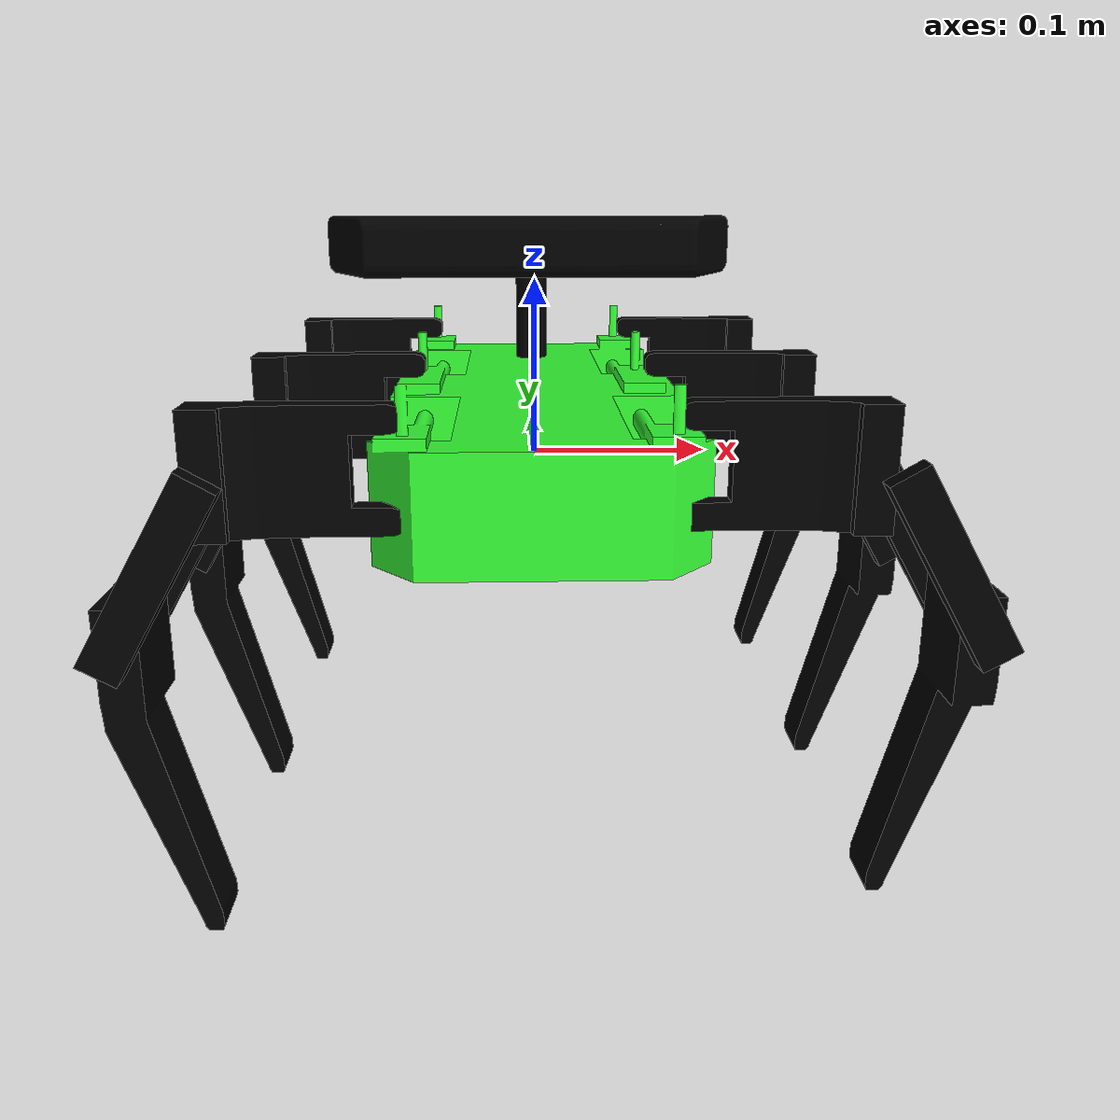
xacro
<?xml version="1.0"?>
<robot xmlns:xacro="http://www.ros.org/wiki/xacro"  name="INSECTOIDv1">
    <xacro:include filename="patterns.xacro"/>

	<link name="base_link"></link>

    <!--BODY -->
     <joint name="base_footprint_joint" type="fixed">
        <parent link="base_link"/>
        <child link="base_footprint"/>
        <origin xyz="0 0 0" rpy="0 0 0"/>
    </joint>
	<joint name="base_joint" type="fixed">
		<origin xyz="0 0 0.01 " />
		<parent link="base_link" />
		<child link="robot_link" />
	</joint>

    <link name="base_footprint">
    </link>
	<link name="robot_link">
		<visual>
			<origin xyz="0 0 0" rpy="0 0 ${pi/2}"/>
			<geometry>
				<mesh filename="${base_path}"/>
			</geometry>
			<material name="green">
				<color rgba="0.2 1 0.2 1"/>
			</material>
		</visual>
		<xacro:inertial_box mass="3.0" x="0.2" y="0.45" z="0.06">
            <origin xyz="0.0 0 0" rpy="0 0 0"/>
        </xacro:inertial_box>
	</link>
    <!--CAMERA-->
    <joint name="camera_joint" type="fixed">
        <origin xyz="0 0.15 0.1" rpy="0 0 ${pi/2}"/>
        <parent link="robot_link"/>
        <child link="camera_link"/>
    </joint>
    <!-- camera_link describes the camera -->

    <link name="camera_link">
        <visual>
            <origin xyz="-0.03 0 0" rpy="0 0 0"/>
            <geometry>
				<mesh filename="${camera}"/>
			</geometry>
        </visual>
        <visual>
            <origin xyz="-0.04 0 -0.04" rpy="0 0 0"/>
            <geometry>
                <cylinder length="0.06" radius="0.01" />
            </geometry>
            <material name="black" />
        </visual>
        <xacro:inertial_box mass="0.1" x="0.12" y="0.06" z="0.12">
            <origin xyz="0.0 0 0" rpy="0 0 0"/>
        </xacro:inertial_box>
    </link>

    <xacro:leg_section_joint joint_name="LL-1-1" joint_axis="0 0 1" joint_xyz="0.07 -0.154663 0.06" joint_parent="robot_link" joint_child="LL-1-1_link" lower_limit="${-(pi/4)}" upper_limit="${pi/4}"  />

    <xacro:leg_section_link link_name="LL-1-1_link" link_xyz="0.04 0 -0.04" link_rpy="0 ${-(pi/2)} 0" model="${arm_path_1}" />

    <xacro:leg_section_joint joint_name="LL-1-2" joint_axis="0 1 0" joint_xyz="0.09 0 -0.04" joint_parent="LL-1-1_link" joint_child="LL-1-2_link" lower_limit="${-pi}" upper_limit="0"  />

    <xacro:leg_section_link link_name="LL-1-2_link" link_xyz="0.02 0 -0.04" link_rpy="${-(pi/6)} 0 ${(pi/2)}" model="${arm_path_2}" />

    <xacro:leg_section_joint joint_name="LL-1-3" joint_axis="0 1 0" joint_xyz="0.04 0 -0.08" joint_parent="LL-1-2_link" joint_child="LL-1-3_link" lower_limit="${-pi/2}" upper_limit="1.51" />

    <xacro:leg_section_link link_name="LL-1-3_link" link_xyz="0 0 -0.06" link_rpy="0 0 ${-pi/2}" model="${arm_path_3}"/>

    <!--LEFT 2-nd-->

    <xacro:leg_section_joint joint_name="LL-2-1" joint_axis="0 0 1" joint_xyz="0.07 -0.01 0.06" joint_parent="robot_link" joint_child="LL-2-1_link" lower_limit="${-pi/4}" upper_limit="${pi/4}" />

    <xacro:leg_section_link link_name="LL-2-1_link" link_xyz="0.04 0 -0.04" link_rpy="0 ${-(pi/2)} 0" model="${arm_path_1}" />

    <xacro:leg_section_joint joint_name="LL-2-2" joint_axis="0 1 0" joint_xyz="0.09 0 -0.04" joint_parent="LL-2-1_link" joint_child="LL-2-2_link" lower_limit="${-pi}" upper_limit="0" />

    <xacro:leg_section_link link_name="LL-2-2_link" link_xyz="0.02 0 -0.04" link_rpy="${(-pi/6)} 0 ${(pi/2)}" model="${arm_path_2}"/>

    <xacro:leg_section_joint joint_name="LL-2-3" joint_axis="0 1 0" joint_xyz="0.04 0 -0.08" joint_parent="LL-2-2_link" joint_child="LL-2-3_link" lower_limit="${-pi/2}" upper_limit="1.51"/>

    <xacro:leg_section_link link_name="LL-2-3_link" link_xyz="0 0 -0.06" link_rpy="0 0 ${-pi/2}" model="${arm_path_3}"/>

<!--LEFT 3-nd-->

    <xacro:leg_section_joint joint_name="LL-3-1" joint_axis="0 0 1" joint_xyz="0.07 0.158646 0.06" joint_parent="robot_link" joint_child="LL-3-1_link" lower_limit="${-pi/4}" upper_limit="${pi/4}" />

    <xacro:leg_section_link link_name="LL-3-1_link" link_xyz="0.04 0 -0.04" link_rpy="0 ${-(pi/2)} 0" model="${arm_path_1}"/>

    <xacro:leg_section_joint joint_name="LL-3-2" joint_axis="0 1 0" joint_xyz="0.09 0 -0.04" joint_parent="LL-3-1_link" joint_child="LL-3-2_link" lower_limit="${-pi}" upper_limit="0" />

    <xacro:leg_section_link link_name="LL-3-2_link" link_xyz="0.02 0 -0.04" link_rpy="${(-pi/6)} 0 ${(pi/2)}" model="${arm_path_2}"/>

    <xacro:leg_section_joint joint_name="LL-3-3" joint_axis="0 1 0" joint_xyz="0.04 0 -0.08" joint_parent="LL-3-2_link" joint_child="LL-3-3_link" lower_limit="${-pi/2}" upper_limit="1.51" />

    <xacro:leg_section_link link_name="LL-3-3_link" link_xyz="0 0 -0.06" link_rpy="0 0 ${-pi/2}" model="${arm_path_3}"/>

<!--RIGHT 1-nd-->

    <xacro:leg_section_joint joint_name="RL-1-1" joint_axis="0 0 1" joint_xyz="-0.07 -0.158646 0.06" joint_parent="robot_link" joint_child="RL-1-1_link" lower_limit="${-pi/4}" upper_limit="${pi/4}" />

    <xacro:leg_section_link link_name="RL-1-1_link" link_xyz="-0.04 0 -0.04" link_rpy="0 ${(pi/2)} 0" model="${arm_path_1}"/>

    <xacro:leg_section_joint joint_name="RL-1-2" joint_axis="0 1 0" joint_xyz="-0.08 0 -0.04" joint_parent="RL-1-1_link" joint_child="RL-1-2_link" lower_limit="0" upper_limit="${pi}" />

    <xacro:leg_section_link link_name="RL-1-2_link" link_xyz="-0.02 0 -0.04" link_rpy="${(pi/6)} 0 ${(pi/2)}" model="${arm_path_2}"/>

    <xacro:leg_section_joint joint_name="RL-1-3" joint_axis="0 1 0" joint_xyz="-0.04 0 -0.08" joint_parent="RL-1-2_link" joint_child="RL-1-3_link" lower_limit="-1.51" upper_limit="${pi/2}" />

    <xacro:leg_section_link link_name="RL-1-3_link" link_xyz="0 0 -0.06" link_rpy="0 0 ${pi/2}" model="${arm_path_3}"/>

<!--RIGHT 2-nd-->

    <xacro:leg_section_joint joint_name="RL-2-1" joint_axis="0 0 1" joint_xyz="-0.07 -0.01 0.06" joint_parent="robot_link" joint_child="RL-2-1_link" lower_limit="${-pi/4}" upper_limit="${pi/4}" />

    <xacro:leg_section_link link_name="RL-2-1_link" link_xyz="-0.04 0 -0.04" link_rpy="0 ${(pi/2)} 0" model="${arm_path_1}"/>

    <xacro:leg_section_joint joint_name="RL-2-2" joint_axis="0 1 0" joint_xyz="-0.08 0 -0.04" joint_parent="RL-2-1_link" joint_child="RL-2-2_link" lower_limit="0" upper_limit="${pi}" />

    <xacro:leg_section_link link_name="RL-2-2_link" link_xyz="-0.02 0 -0.04" link_rpy="${(pi/6)} 0 ${(pi/2)}" model="${arm_path_2}"/>

    <xacro:leg_section_joint joint_name="RL-2-3" joint_axis="0 1 0" joint_xyz="-0.04 0 -0.08" joint_parent="RL-2-2_link" joint_child="RL-2-3_link" lower_limit="-1.51" upper_limit="${pi/2}" />

    <xacro:leg_section_link link_name="RL-2-3_link" link_xyz="0 0 -0.06" link_rpy="0 0 ${pi/2}" model="${arm_path_3}"/>

<!--RIGHT 3-nd-->

    <xacro:leg_section_joint joint_name="RL-3-1" joint_axis="0 0 1" joint_xyz="-0.07 0.158646 0.06" joint_parent="robot_link" joint_child="RL-3-1_link" lower_limit="${-pi/4}" upper_limit="${pi/4}" />

    <xacro:leg_section_link link_name="RL-3-1_link" link_xyz="-0.04 0 -0.04" link_rpy="0 ${(pi/2)} 0" model="${arm_path_1}"/>

    <xacro:leg_section_joint joint_name="RL-3-2" joint_axis="0 1 0" joint_xyz="-0.08 0 -0.04" joint_parent="RL-3-1_link" joint_child="RL-3-2_link" lower_limit="0" upper_limit="${pi}" />

    <xacro:leg_section_link link_name="RL-3-2_link" link_xyz="-0.02 0 -0.04" link_rpy="${(pi/6)} 0 ${(pi/2)}" model="${arm_path_2}"/>

    <xacro:leg_section_joint joint_name="RL-3-3" joint_axis="0 1 0" joint_xyz="-0.04 0 -0.08" joint_parent="RL-3-2_link" joint_child="RL-3-3_link" lower_limit="-1.51" upper_limit="${pi/2}" />

    <xacro:leg_section_link link_name="RL-3-3_link" link_xyz="0 0 -0.06" link_rpy="0 0 ${pi/2}" model="${arm_path_3}"/>

</robot>

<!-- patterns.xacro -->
<robot xmlns:xacro="http://www.ros.org/wiki/xacro">

<!--Models-->
    <xacro:property name="base_path" value="file:////home/zega/Desktop/ros_dev/src/real/meshes/base1.dae" />
    <xacro:property name="arm_path_1" value="file:////home/zega/Desktop/ros_dev/src/real/meshes/l-1.dae" />
    <xacro:property name="arm_path_2" value="file:////home/zega/Desktop/ros_dev/src/real/meshes/l-2.dae" />
    <xacro:property name="arm_path_3" value="file:////home/zega/Desktop/ros_dev/src/real/meshes/l-3.dae" />
    <xacro:property name="camera" value="file:////home/zega/Desktop/ros_dev/src/real/meshes/kinect.dae" />
 <!--Models-->
    <material name="white">
        <color rgba="1 1 1 1" />
    </material>

    <material name="orange">
        <color rgba="1 0.3 0.1 1"/>
    </material>

    <material name="blue">
        <color rgba="0.2 0.2 1 1"/>
    </material>

    <material name="black">
        <color rgba="0 0 0 1"/>
    </material>

    <material name="red">
        <color rgba="1 0 0 1"/>
    </material>
<!--Phys macro-->
	<xacro:macro name="inertial_box" params="mass x y z *origin">
		<inertial>
			<xacro:insert_block name="origin"/>
			<mass value="${mass}" />
			<inertia ixx="${(1/12) * mass * (y*y+z*z)}" ixy="0.0" ixz="0.0"
                    iyy="${(1/12) * mass * (x*x+z*z)}" iyz="0.0"
                    izz="${(1/12) * mass * (x*x+y*y)}" />
		</inertial>
	</xacro:macro>

    <xacro:macro name="inertial_cylinder" params="mass length radius *origin">
        <inertial>
            <xacro:insert_block name="origin"/>
            <mass value="${mass}" />
            <inertia ixx="${(1/12) * mass * (3*radius*radius + length*length)}" ixy="0.0" ixz="0.0"
                    iyy="${(1/12) * mass * (3*radius*radius + length*length)}" iyz="0.0"
                    izz="${(1/2) * mass * (radius*radius)}" />
        </inertial>
    </xacro:macro>

<!--LEG MACROS-->
    <xacro:macro name="leg_section_joint" params="joint_name joint_axis joint_xyz joint_parent joint_child lower_limit upper_limit ">
		<joint name="${joint_name}" type="revolute">
		    <origin xyz="${joint_xyz}" />
		    <parent link="${joint_parent}" />
		    <child link="${joint_child}" />
		    <axis xyz="${joint_axis}"/>
		    <limit lower="${lower_limit}" upper="${upper_limit}"  velocity="50" effort="5"/>
            <dynamics damping="1.7" friction="1.7"/>
	    </joint>

    </xacro:macro>
    <xacro:macro name="leg_section_link" params="link_name link_xyz link_rpy model">
        <link name="${link_name}">
		    <visual>
			    <origin xyz="${link_xyz}" rpy="${link_rpy}"/>
			    <geometry>
			    	<mesh filename="${model}"/>
			    </geometry>
		    </visual>
		    <collision>
			    <origin xyz="${link_xyz}" rpy="${link_rpy}"/>
			    <geometry>
				    <mesh filename="${model}"/>
			    </geometry>
		    </collision>
		    <xacro:inertial_box mass="0.5" x="0.09" y="0.02" z="0.2">
			    <origin xyz="${link_xyz}" rpy="${link_rpy}"/>
		    </xacro:inertial_box>
	    </link>

	</xacro:macro>

</robot>
